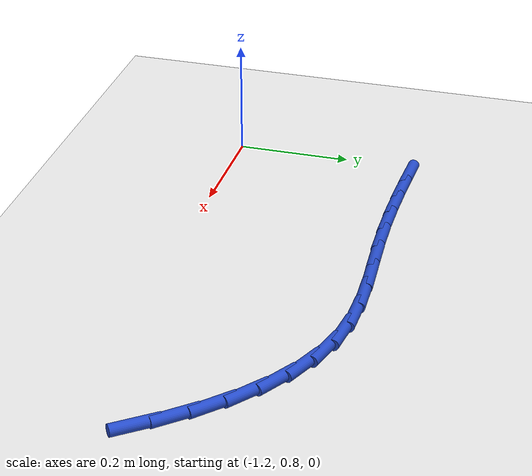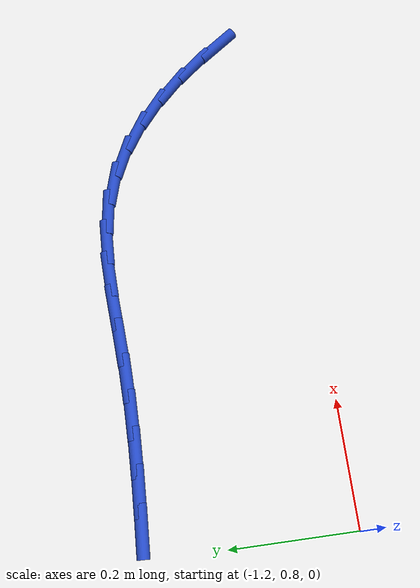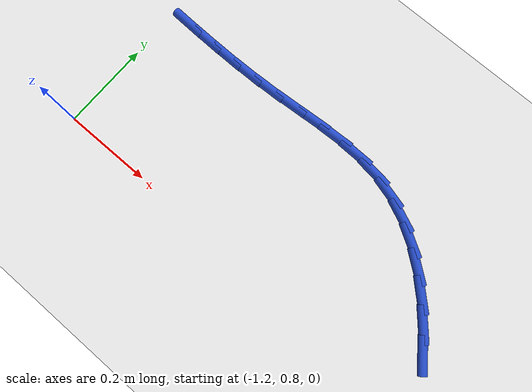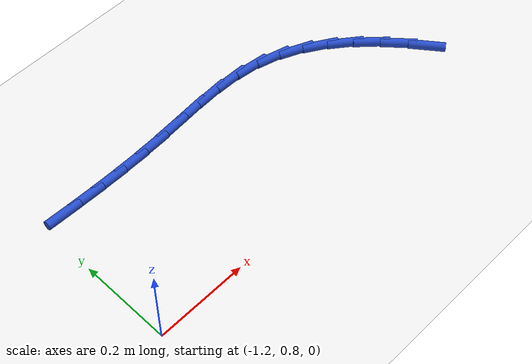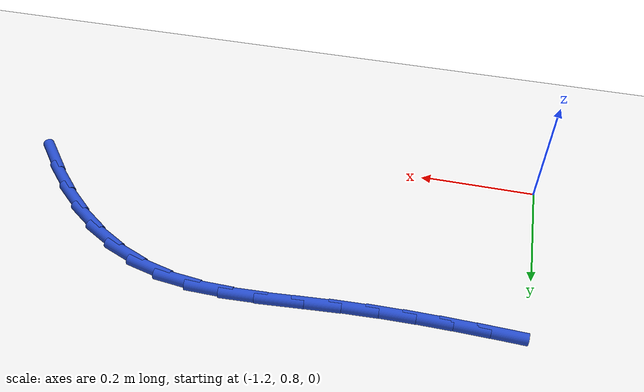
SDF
<sdf version="1.6">
 <world name="default">
  <model name="ground_plane">
   <static>1</static>
   <link name="link">
    <collision name="collision">
     <geometry><plane><normal>0 0 1</normal><size>100 100</size></plane></geometry>
     <surface><friction><ode><mu>100</mu><mu2>50</mu2></ode></friction></surface>
    </collision>
    <visual name="visual">
     <cast_shadows>0</cast_shadows>
     <geometry><plane><normal>0 0 1</normal><size>100 100</size></plane></geometry>
     <material>
      <script><uri>file://media/materials/scripts/gazebo.material</uri><name>Gazebo/WhiteGlow</name></script>
     </material>
    </visual>
   </link>
  </model>
  <model name="line">
   <link name="link_16">
    <pose>-0.33163346851949255 0.9013651727297805 0.01 0 1.57 -0.9195033168694402</pose>
    <collision name="collision">
     <geometry><cylinder><radius>0.01</radius><length>0.08</length></cylinder></geometry>
    </collision>
    <visual name="visual">
     <material>
      <script><name>Gazebo/Blue</name><uri>file://media/materials/scripts/gazebo.material</uri></script>
     </material>
     <geometry><cylinder><radius>0.01</radius><length>0.08</length></cylinder></geometry>
    </visual>
   </link>
   <link name="link_17">
    <pose>-0.3679874407144463 0.9490583592133995 0.01 0 1.57 -0.8460201552442258</pose>
    <collision name="collision">
     <geometry><cylinder><radius>0.01</radius><length>0.08</length></cylinder></geometry>
    </collision>
    <visual name="visual">
     <material>
      <script><name>Gazebo/Blue</name><uri>file://media/materials/scripts/gazebo.material</uri></script>
     </material>
     <geometry><cylinder><radius>0.01</radius><length>0.08</length></cylinder></geometry>
    </visual>
   </link>
   <link name="link_18">
    <pose>-0.4066027570564154 0.992664200859453 0.01 0 1.57 -0.7591911956033619</pose>
    <collision name="collision">
     <geometry><cylinder><radius>0.01</radius><length>0.08</length></cylinder></geometry>
    </collision>
    <visual name="visual">
     <material>
      <script><name>Gazebo/Blue</name><uri>file://media/materials/scripts/gazebo.material</uri></script>
     </material>
     <geometry><cylinder><radius>0.01</radius><length>0.08</length></cylinder></geometry>
    </visual>
   </link>
   <link name="link_19">
    <pose>-0.4476024314818797 1.0315693330551101 0.01 0 1.57 -0.6574851832405448</pose>
    <collision name="collision">
     <geometry><cylinder><radius>0.01</radius><length>0.08</length></cylinder></geometry>
    </collision>
    <visual name="visual">
     <material>
      <script><name>Gazebo/Blue</name><uri>file://media/materials/scripts/gazebo.material</uri></script>
     </material>
     <geometry><cylinder><radius>0.01</radius><length>0.08</length></cylinder></geometry>
    </visual>
   </link>
   <link name="link_20">
    <pose>-0.4911094779273187 1.0651603911875394 0.01 0 1.57 -0.5401191925828324</pose>
    <collision name="collision">
     <geometry><cylinder><radius>0.01</radius><length>0.08</length></cylinder></geometry>
    </collision>
    <visual name="visual">
     <material>
      <script><name>Gazebo/Blue</name><uri>file://media/materials/scripts/gazebo.material</uri></script>
     </material>
     <geometry><cylinder><radius>0.01</radius><length>0.08</length></cylinder></geometry>
    </visual>
   </link>
   <link name="link_21">
    <pose>-0.5372469103292117 1.092824010643909 0.01 0 1.57 -0.4078188089321501</pose>
    <collision name="collision">
     <geometry><cylinder><radius>0.01</radius><length>0.08</length></cylinder></geometry>
    </collision>
    <visual name="visual">
     <material>
      <script><name>Gazebo/Blue</name><uri>file://media/materials/scripts/gazebo.material</uri></script>
     </material>
     <geometry><cylinder><radius>0.01</radius><length>0.08</length></cylinder></geometry>
    </visual>
   </link>
   <link name="link_22">
    <pose>-0.5861377426240388 1.1139468268113895 0.01 0 1.57 -0.26355864082814157</pose>
    <collision name="collision">
     <geometry><cylinder><radius>0.01</radius><length>0.08</length></cylinder></geometry>
    </collision>
    <visual name="visual">
     <material>
      <script><name>Gazebo/Blue</name><uri>file://media/materials/scripts/gazebo.material</uri></script>
     </material>
     <geometry><cylinder><radius>0.01</radius><length>0.08</length></cylinder></geometry>
    </visual>
   </link>
   <link name="link_23">
    <pose>-0.6379049887482791 1.1279154750771476 0.01 0 1.57 -0.12092237237369782</pose>
    <collision name="collision">
     <geometry><cylinder><radius>0.01</radius><length>0.08</length></cylinder></geometry>
    </collision>
    <visual name="visual">
     <material>
      <script><name>Gazebo/Blue</name><uri>file://media/materials/scripts/gazebo.material</uri></script>
     </material>
     <geometry><cylinder><radius>0.01</radius><length>0.08</length></cylinder></geometry>
    </visual>
   </link>
   <link name="link_24">
    <pose>-0.6925259554971848 1.1345527541226887 0.01 0 1.57 -0.015776764145382937</pose>
    <collision name="collision">
     <geometry><cylinder><radius>0.01</radius><length>0.08</length></cylinder></geometry>
    </collision>
    <visual name="visual">
     <material>
      <script><name>Gazebo/Blue</name><uri>file://media/materials/scripts/gazebo.material</uri></script>
     </material>
     <geometry><cylinder><radius>0.01</radius><length>0.08</length></cylinder></geometry>
    </visual>
   </link>
   <link name="link_25">
    <pose>-0.7493871707628272 1.1354499145424795 0.01 0 1.57 0.04802007589115272</pose>
    <collision name="collision">
     <geometry><cylinder><radius>0.01</radius><length>0.08</length></cylinder></geometry>
    </collision>
    <visual name="visual">
     <material>
      <script><name>Gazebo/Blue</name><uri>file://media/materials/scripts/gazebo.material</uri></script>
     </material>
     <geometry><cylinder><radius>0.01</radius><length>0.08</length></cylinder></geometry>
    </visual>
   </link>
   <link name="link_26">
    <pose>-0.8077254530894212 1.1326463505278193 0.01 0 1.57 0.07546573111328558</pose>
    <collision name="collision">
     <geometry><cylinder><radius>0.01</radius><length>0.08</length></cylinder></geometry>
    </collision>
    <visual name="visual">
     <material>
      <script><name>Gazebo/Blue</name><uri>file://media/materials/scripts/gazebo.material</uri></script>
     </material>
     <geometry><cylinder><radius>0.01</radius><length>0.08</length></cylinder></geometry>
    </visual>
   </link>
   <link name="link_27">
    <pose>-0.8667776210075765 1.1281814563107329 0.01 0 1.57 0.06919120952287172</pose>
    <collision name="collision">
     <geometry><cylinder><radius>0.01</radius><length>0.08</length></cylinder></geometry>
    </collision>
    <visual name="visual">
     <material>
      <script><name>Gazebo/Blue</name><uri>file://media/materials/scripts/gazebo.material</uri></script>
     </material>
     <geometry><cylinder><radius>0.01</radius><length>0.08</length></cylinder></geometry>
    </visual>
   </link>
   <link name="link_28">
    <pose>-0.9257813117454812 1.1240923921380654 0.01 0 1.57 0.03971131918685657</pose>
    <collision name="collision">
     <geometry><cylinder><radius>0.01</radius><length>0.08</length></cylinder></geometry>
    </collision>
    <visual name="visual">
     <material>
      <script><name>Gazebo/Blue</name><uri>file://media/materials/scripts/gazebo.material</uri></script>
     </material>
     <geometry><cylinder><radius>0.01</radius><length>0.08</length></cylinder></geometry>
    </visual>
   </link>
   <link name="link_29">
    <pose>-0.9842107049876682 1.1217708633831431 0.01 0 1.57 0.012050070004715576</pose>
    <collision name="collision">
     <geometry><cylinder><radius>0.01</radius><length>0.08</length></cylinder></geometry>
    </collision>
    <visual name="visual">
     <material>
      <script><name>Gazebo/Blue</name><uri>file://media/materials/scripts/gazebo.material</uri></script>
     </material>
     <geometry><cylinder><radius>0.01</radius><length>0.08</length></cylinder></geometry>
    </visual>
   </link>
   <link name="link_30">
    <pose>-1.0421026455102669 1.1210732276802684 0.01 0 1.57 -0.00973049015681625</pose>
    <collision name="collision">
     <geometry><cylinder><radius>0.01</radius><length>0.08</length></cylinder></geometry>
    </collision>
    <visual name="visual">
     <material>
      <script><name>Gazebo/Blue</name><uri>file://media/materials/scripts/gazebo.material</uri></script>
     </material>
     <geometry><cylinder><radius>0.01</radius><length>0.08</length></cylinder></geometry>
    </visual>
   </link>
   <link name="link_31">
    <pose>-1.0995758319202937 1.1216324876057213 0.01 0 1.57 -0.025341412715935107</pose>
    <collision name="collision">
     <geometry><cylinder><radius>0.01</radius><length>0.08</length></cylinder></geometry>
    </collision>
    <visual name="visual">
     <material>
      <script><name>Gazebo/Blue</name><uri>file://media/materials/scripts/gazebo.material</uri></script>
     </material>
     <geometry><cylinder><radius>0.01</radius><length>0.08</length></cylinder></geometry>
    </visual>
   </link>
   <link name="link_32">
    <pose>-1.1567489628247656 1.123081645735782 0.01 0 1.57 -0.03458871809192071</pose>
    <collision name="collision">
     <geometry><cylinder><radius>0.01</radius><length>0.08</length></cylinder></geometry>
    </collision>
    <visual name="visual">
     <material>
      <script><name>Gazebo/Blue</name><uri>file://media/materials/scripts/gazebo.material</uri></script>
     </material>
     <geometry><cylinder><radius>0.01</radius><length>0.08</length></cylinder></geometry>
    </visual>
   </link>
  </model>
 </world>
</sdf>
